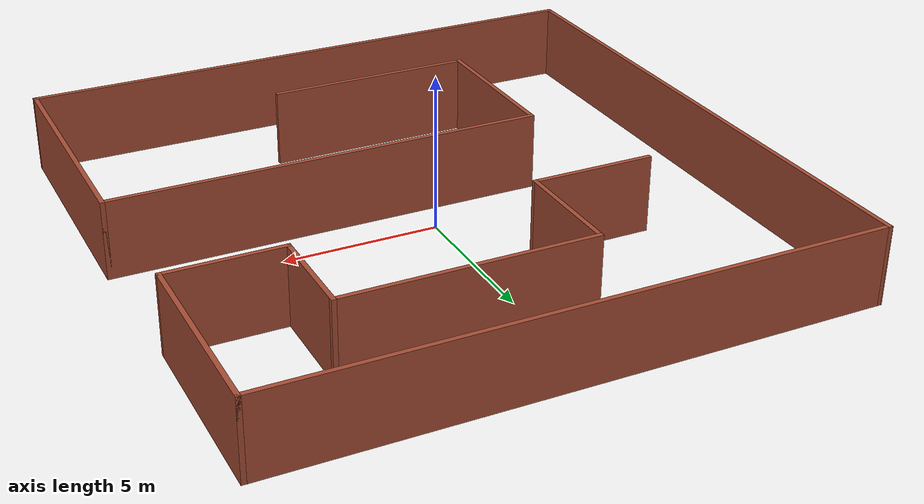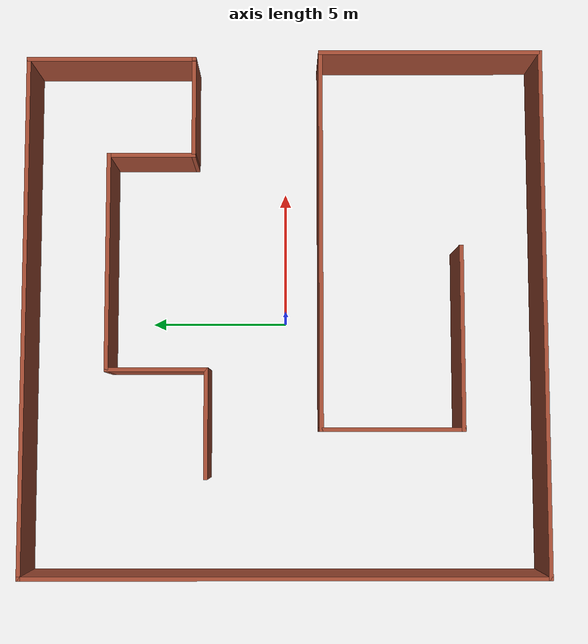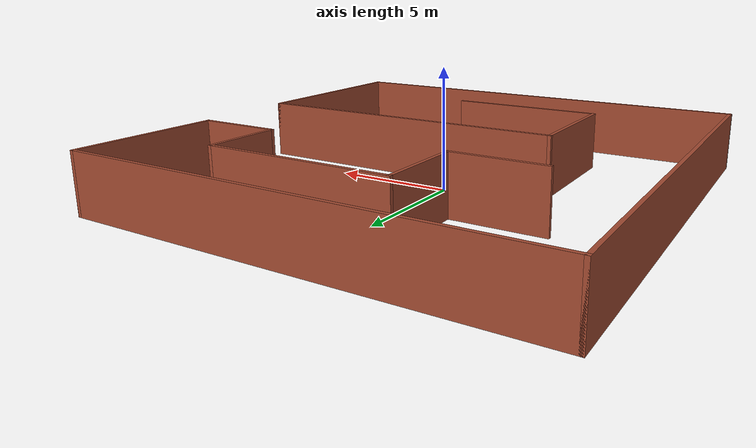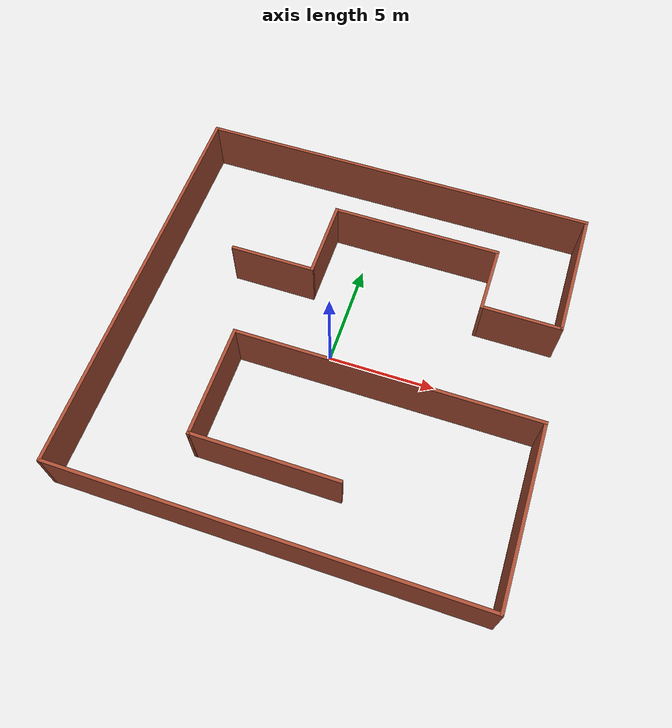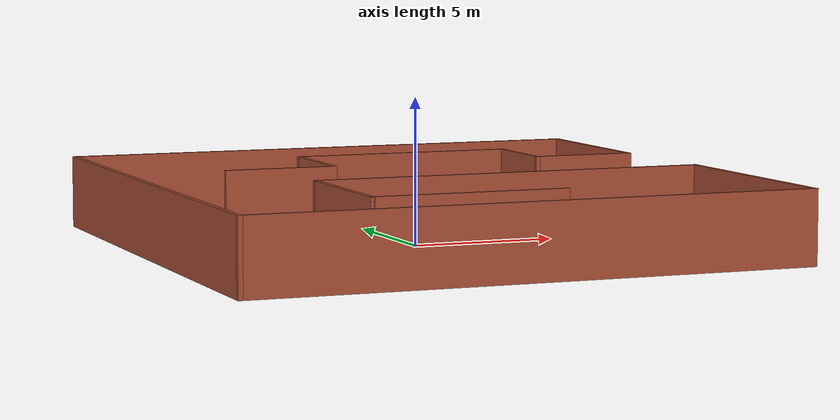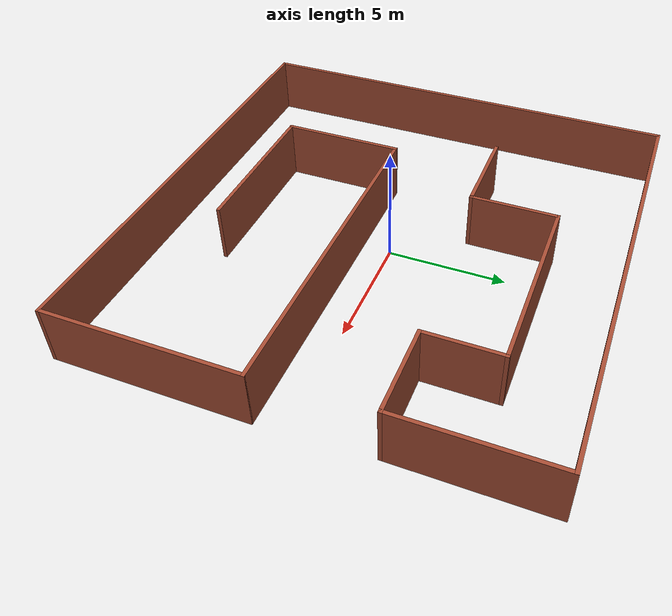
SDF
<?xml version='1.0'?>
<sdf version='1.7'>
  <model name='simple_world'>
    <pose>0.32 0.045 0 0 -0 0</pose>
    <link name='Wall_0'>
      <collision name='Wall_0_Collision'>
        <geometry>
          <box>
            <size>14 0.15 2.5</size>
          </box>
        </geometry>
        <pose>0 0 1.25 0 -0 0</pose>
      </collision>
      <visual name='Wall_0_Visual'>
        <pose>0 0 1.25 0 -0 0</pose>
        <geometry>
          <box>
            <size>14 0.15 2.5</size>
          </box>
        </geometry>
        <material>
          <script>
            <uri>file://media/materials/scripts/gazebo.material</uri>
            <name>Gazebo/Bricks</name>
          </script>
          <ambient>1 1 1 1</ambient>
        </material>
        <meta>
          <layer>0</layer>
        </meta>
      </visual>
      <pose>2.625 -1.325 0 0 -0 0</pose>
    </link>
    <link name='Wall_1'>
      <collision name='Wall_1_Collision'>
        <geometry>
          <box>
            <size>8.25 0.15 2.5</size>
          </box>
        </geometry>
        <pose>0 0 1.25 0 -0 0</pose>
      </collision>
      <visual name='Wall_1_Visual'>
        <pose>0 0 1.25 0 -0 0</pose>
        <geometry>
          <box>
            <size>8.25 0.15 2.5</size>
          </box>
        </geometry>
        <material>
          <script>
            <uri>file://media/materials/scripts/gazebo.material</uri>
            <name>Gazebo/Bricks</name>
          </script>
          <ambient>1 1 1 1</ambient>
        </material>
        <meta>
          <layer>0</layer>
        </meta>
      </visual>
      <pose>9.55 -5.375 0 0 -0 -1.5708</pose>
    </link>
    <link name='Wall_10'>
      <collision name='Wall_10_Collision'>
        <geometry>
          <box>
            <size>4 0.15 2.5</size>
          </box>
        </geometry>
        <pose>0 0 1.25 0 -0 0</pose>
      </collision>
      <visual name='Wall_10_Visual'>
        <pose>0 0 1.25 0 -0 0</pose>
        <geometry>
          <box>
            <size>4 0.15 2.5</size>
          </box>
        </geometry>
        <material>
          <script>
            <uri>file://media/materials/scripts/gazebo.material</uri>
            <name>Gazebo/Bricks</name>
          </script>
          <ambient>1 1 1 1</ambient>
        </material>
        <meta>
          <layer>0</layer>
        </meta>
      </visual>
      <pose>-4.075 2.825 0 0 -0 3.14159</pose>
    </link>
    <link name='Wall_12'>
      <collision name='Wall_12_Collision'>
        <geometry>
          <box>
            <size>5.25 0.15 2.5</size>
          </box>
        </geometry>
        <pose>0 0 1.25 0 -0 0</pose>
      </collision>
      <visual name='Wall_12_Visual'>
        <pose>0 0 1.25 0 -0 0</pose>
        <geometry>
          <box>
            <size>5.25 0.15 2.5</size>
          </box>
        </geometry>
        <material>
          <script>
            <uri>file://media/materials/scripts/gazebo.material</uri>
            <name>Gazebo/Bricks</name>
          </script>
          <ambient>1 1 1 1</ambient>
        </material>
        <meta>
          <layer>0</layer>
        </meta>
      </visual>
      <pose>-4.3 -3.875 0 0 -0 -1.5708</pose>
    </link>
    <link name='Wall_13'>
      <collision name='Wall_13_Collision'>
        <geometry>
          <box>
            <size>6.75 0.15 2.5</size>
          </box>
        </geometry>
        <pose>0 0 1.25 0 -0 0</pose>
      </collision>
      <visual name='Wall_13_Visual'>
        <pose>0 0 1.25 0 -0 0</pose>
        <geometry>
          <box>
            <size>6.75 0.15 2.5</size>
          </box>
        </geometry>
        <material>
          <script>
            <uri>file://media/materials/scripts/gazebo.material</uri>
            <name>Gazebo/Bricks</name>
          </script>
          <ambient>1 1 1 1</ambient>
        </material>
        <meta>
          <layer>0</layer>
        </meta>
      </visual>
      <pose>-1 -6.425 0 0 -0 0</pose>
    </link>
    <link name='Wall_2'>
      <collision name='Wall_2_Collision'>
        <geometry>
          <box>
            <size>19.25 0.15 2.5</size>
          </box>
        </geometry>
        <pose>0 0 1.25 0 -0 0</pose>
      </collision>
      <visual name='Wall_2_Visual'>
        <pose>0 0 1.25 0 -0 0</pose>
        <geometry>
          <box>
            <size>19.25 0.15 2.5</size>
          </box>
        </geometry>
        <material>
          <script>
            <uri>file://media/materials/scripts/gazebo.material</uri>
            <name>Gazebo/Bricks</name>
          </script>
          <ambient>1 1 1 1</ambient>
        </material>
        <meta>
          <layer>0</layer>
        </meta>
      </visual>
      <pose>-0 -9.425 0 0 -0 3.14159</pose>
    </link>
    <link name='Wall_3'>
      <collision name='Wall_3_Collision'>
        <geometry>
          <box>
            <size>19 0.15 2.5</size>
          </box>
        </geometry>
        <pose>0 0 1.25 0 -0 0</pose>
      </collision>
      <visual name='Wall_3_Visual'>
        <pose>0 0 1.25 0 -0 0</pose>
        <geometry>
          <box>
            <size>19 0.15 2.5</size>
          </box>
        </geometry>
        <material>
          <script>
            <uri>file://media/materials/scripts/gazebo.material</uri>
            <name>Gazebo/Bricks</name>
          </script>
          <ambient>1 1 1 1</ambient>
        </material>
        <meta>
          <layer>0</layer>
        </meta>
      </visual>
      <pose>-9.55 -0 0 0 -0 1.5708</pose>
    </link>
    <link name='Wall_4'>
      <collision name='Wall_4_Collision'>
        <geometry>
          <box>
            <size>19 0.15 2.5</size>
          </box>
        </geometry>
        <pose>0 0 1.25 0 -0 0</pose>
      </collision>
      <visual name='Wall_4_Visual'>
        <pose>0 0 1.25 0 -0 0</pose>
        <geometry>
          <box>
            <size>19 0.15 2.5</size>
          </box>
        </geometry>
        <material>
          <script>
            <uri>file://media/materials/scripts/gazebo.material</uri>
            <name>Gazebo/Bricks</name>
          </script>
          <ambient>1 1 1 1</ambient>
        </material>
        <meta>
          <layer>0</layer>
        </meta>
      </visual>
      <pose>-0.125 9.425 0 0 -0 0</pose>
    </link>
    <link name='Wall_5'>
      <collision name='Wall_5_Collision'>
        <geometry>
          <box>
            <size>6.25 0.15 2.5</size>
          </box>
        </geometry>
        <pose>0 0 1.25 0 -0 0</pose>
      </collision>
      <visual name='Wall_5_Visual'>
        <pose>0 0 1.25 0 -0 0</pose>
        <geometry>
          <box>
            <size>6.25 0.15 2.5</size>
          </box>
        </geometry>
        <material>
          <script>
            <uri>file://media/materials/scripts/gazebo.material</uri>
            <name>Gazebo/Bricks</name>
          </script>
          <ambient>1 1 1 1</ambient>
        </material>
        <meta>
          <layer>0</layer>
        </meta>
      </visual>
      <pose>9.3 6.375 0 0 -0 -1.5708</pose>
    </link>
    <link name='Wall_6'>
      <collision name='Wall_6_Collision'>
        <geometry>
          <box>
            <size>3.75 0.15 2.5</size>
          </box>
        </geometry>
        <pose>0 0 1.25 0 -0 0</pose>
      </collision>
      <visual name='Wall_6_Visual'>
        <pose>0 0 1.25 0 -0 0</pose>
        <geometry>
          <box>
            <size>3.75 0.15 2.5</size>
          </box>
        </geometry>
        <material>
          <script>
            <uri>file://media/materials/scripts/gazebo.material</uri>
            <name>Gazebo/Bricks</name>
          </script>
          <ambient>1 1 1 1</ambient>
        </material>
        <meta>
          <layer>0</layer>
        </meta>
      </visual>
      <pose>7.5 3.325 0 0 -0 3.14159</pose>
    </link>
    <link name='Wall_7'>
      <collision name='Wall_7_Collision'>
        <geometry>
          <box>
            <size>3.25 0.15 2.5</size>
          </box>
        </geometry>
        <pose>0 0 1.25 0 -0 0</pose>
      </collision>
      <visual name='Wall_7_Visual'>
        <pose>0 0 1.25 0 -0 0</pose>
        <geometry>
          <box>
            <size>3.25 0.15 2.5</size>
          </box>
        </geometry>
        <material>
          <script>
            <uri>file://media/materials/scripts/gazebo.material</uri>
            <name>Gazebo/Bricks</name>
          </script>
          <ambient>1 1 1 1</ambient>
        </material>
        <meta>
          <layer>0</layer>
        </meta>
      </visual>
      <pose>5.7 4.875 0 0 -0 1.5708</pose>
    </link>
    <link name='Wall_8'>
      <collision name='Wall_8_Collision'>
        <geometry>
          <box>
            <size>8 0.15 2.5</size>
          </box>
        </geometry>
        <pose>0 0 1.25 0 -0 0</pose>
      </collision>
      <visual name='Wall_8_Visual'>
        <pose>0 0 1.25 0 -0 0</pose>
        <geometry>
          <box>
            <size>8 0.15 2.5</size>
          </box>
        </geometry>
        <material>
          <script>
            <uri>file://media/materials/scripts/gazebo.material</uri>
            <name>Gazebo/Bricks</name>
          </script>
          <ambient>1 1 1 1</ambient>
        </material>
        <meta>
          <layer>0</layer>
        </meta>
      </visual>
      <pose>1.775 6.425 0 0 -0 3.14159</pose>
    </link>
    <link name='Wall_9'>
      <collision name='Wall_9_Collision'>
        <geometry>
          <box>
            <size>3.75 0.15 2.5</size>
          </box>
        </geometry>
        <pose>0 0 1.25 0 -0 0</pose>
      </collision>
      <visual name='Wall_9_Visual'>
        <pose>0 0 1.25 0 -0 0</pose>
        <geometry>
          <box>
            <size>3.75 0.15 2.5</size>
          </box>
        </geometry>
        <material>
          <script>
            <uri>file://media/materials/scripts/gazebo.material</uri>
            <name>Gazebo/Bricks</name>
          </script>
          <ambient>1 1 1 1</ambient>
        </material>
        <meta>
          <layer>0</layer>
        </meta>
      </visual>
      <pose>-2.15 4.625 0 0 -0 -1.5708</pose>
    </link>
    <static>1</static>
  </model>
</sdf>
